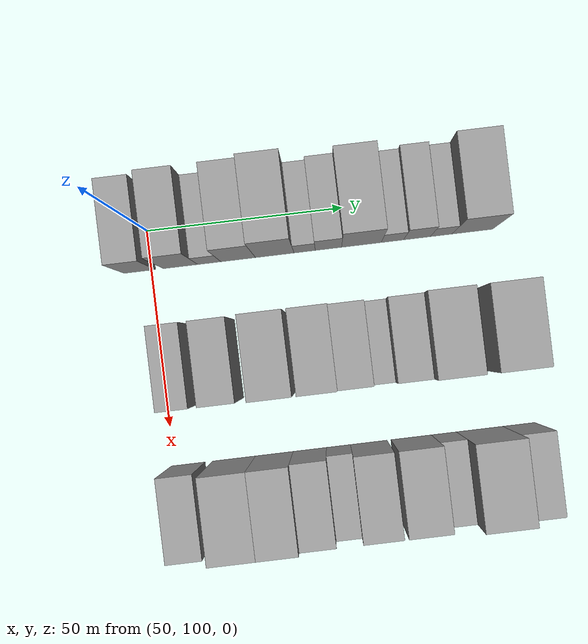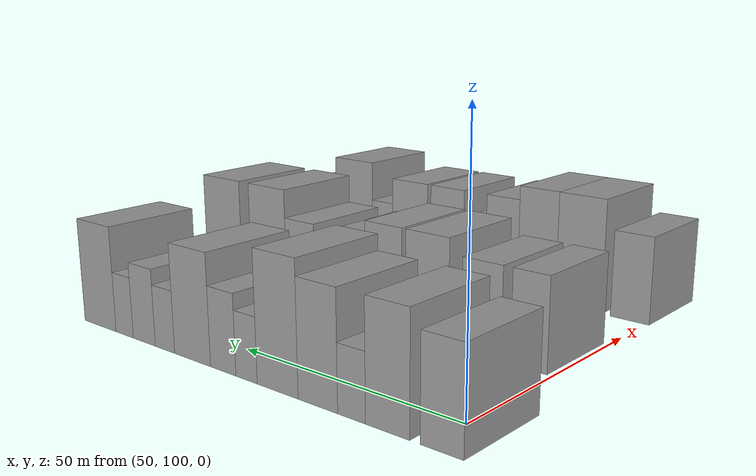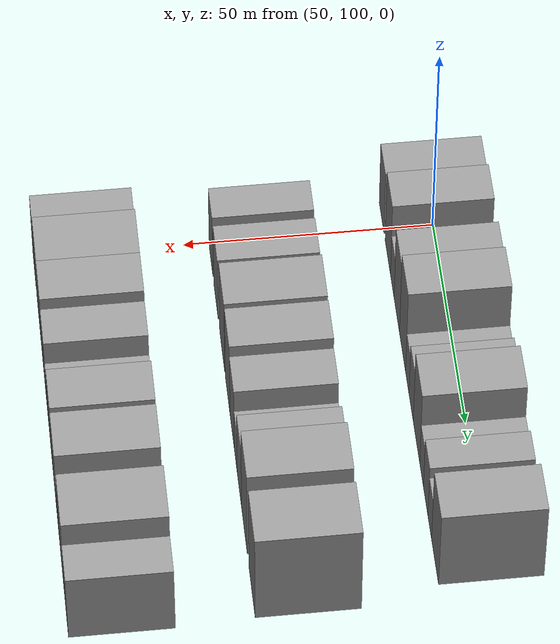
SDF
<sdf version="1.6">
 <world name="default">
  <model name="building_47">
   <static>1</static>
   <pose>50.0000 97.1232 0 0.000000 0.000000 0.000000</pose>
   <link name="link">
    <pose>0 0 9.00 0 0 0</pose>
    <collision name="collision"><geometry><box><size>20.0000 8.0123 18.0000</size></box></geometry></collision>
    <visual name="visual">
     <cast_shadows>0</cast_shadows>
     <geometry><box><size>20.0000 8.0123 18.0000</size></box></geometry>
     <material>
      <script>
       <uri>model://grey_wall/materials/scripts</uri>
       <uri>model://grey_wall/materials/textures</uri>
       <name>vrc/grey_wall</name>
      </script>
     </material>
    </visual>
   </link>
  </model>
  <model name="building_48">
   <static>1</static>
   <pose>50.0000 107.5432 0 0.000000 0.000000 0.000000</pose>
   <link name="link">
    <pose>0 0 10.50 0 0 0</pose>
    <collision name="collision"><geometry><box><size>20.0000 8.8278 21.0000</size></box></geometry></collision>
    <visual name="visual">
     <cast_shadows>0</cast_shadows>
     <geometry><box><size>20.0000 8.8278 21.0000</size></box></geometry>
     <material>
      <script>
       <uri>model://grey_wall/materials/scripts</uri>
       <uri>model://grey_wall/materials/textures</uri>
       <name>vrc/grey_wall</name>
      </script>
     </material>
    </visual>
   </link>
  </model>
  <model name="building_49">
   <static>1</static>
   <pose>50.0000 114.9018 0 0.000000 0.000000 0.000000</pose>
   <link name="link">
    <pose>0 0 6.00 0 0 0</pose>
    <collision name="collision"><geometry><box><size>20.0000 5.8894 12.0000</size></box></geometry></collision>
    <visual name="visual">
     <cast_shadows>0</cast_shadows>
     <geometry><box><size>20.0000 5.8894 12.0000</size></box></geometry>
     <material>
      <script>
       <uri>model://grey_wall/materials/scripts</uri>
       <uri>model://grey_wall/materials/textures</uri>
       <name>vrc/grey_wall</name>
      </script>
     </material>
    </visual>
   </link>
  </model>
  <model name="building_50">
   <static>1</static>
   <pose>50.0000 122.2735 0 0.000000 0.000000 0.000000</pose>
   <link name="link">
    <pose>0 0 10.50 0 0 0</pose>
    <collision name="collision"><geometry><box><size>20.0000 8.8539 21.0000</size></box></geometry></collision>
    <visual name="visual">
     <cast_shadows>0</cast_shadows>
     <geometry><box><size>20.0000 8.8539 21.0000</size></box></geometry>
     <material>
      <script>
       <uri>model://grey_wall/materials/scripts</uri>
       <uri>model://grey_wall/materials/textures</uri>
       <name>vrc/grey_wall</name>
      </script>
     </material>
    </visual>
   </link>
  </model>
  <model name="building_51">
   <static>1</static>
   <pose>50.0000 131.6182 0 0.000000 0.000000 0.000000</pose>
   <link name="link">
    <pose>0 0 12.00 0 0 0</pose>
    <collision name="collision"><geometry><box><size>20.0000 9.8357 24.0000</size></box></geometry></collision>
    <visual name="visual">
     <cast_shadows>0</cast_shadows>
     <geometry><box><size>20.0000 9.8357 24.0000</size></box></geometry>
     <material>
      <script>
       <uri>model://grey_wall/materials/scripts</uri>
       <uri>model://grey_wall/materials/textures</uri>
       <name>vrc/grey_wall</name>
      </script>
     </material>
    </visual>
   </link>
  </model>
  <model name="building_52">
   <static>1</static>
   <pose>50.0000 139.2439 0 0.000000 0.000000 0.000000</pose>
   <link name="link">
    <pose>0 0 6.00 0 0 0</pose>
    <collision name="collision"><geometry><box><size>20.0000 5.4157 12.0000</size></box></geometry></collision>
    <visual name="visual">
     <cast_shadows>0</cast_shadows>
     <geometry><box><size>20.0000 5.4157 12.0000</size></box></geometry>
     <material>
      <script>
       <uri>model://grey_wall/materials/scripts</uri>
       <uri>model://grey_wall/materials/textures</uri>
       <name>vrc/grey_wall</name>
      </script>
     </material>
    </visual>
   </link>
  </model>
  <model name="building_53">
   <static>1</static>
   <pose>50.0000 145.3080 0 0.000000 0.000000 0.000000</pose>
   <link name="link">
    <pose>0 0 7.50 0 0 0</pose>
    <collision name="collision"><geometry><box><size>20.0000 6.7124 15.0000</size></box></geometry></collision>
    <visual name="visual">
     <cast_shadows>0</cast_shadows>
     <geometry><box><size>20.0000 6.7124 15.0000</size></box></geometry>
     <material>
      <script>
       <uri>model://grey_wall/materials/scripts</uri>
       <uri>model://grey_wall/materials/textures</uri>
       <name>vrc/grey_wall</name>
      </script>
     </material>
    </visual>
   </link>
  </model>
  <model name="building_54">
   <static>1</static>
   <pose>50.0000 153.7200 0 0.000000 0.000000 0.000000</pose>
   <link name="link">
    <pose>0 0 10.50 0 0 0</pose>
    <collision name="collision"><geometry><box><size>20.0000 10.1116 21.0000</size></box></geometry></collision>
    <visual name="visual">
     <cast_shadows>0</cast_shadows>
     <geometry><box><size>20.0000 10.1116 21.0000</size></box></geometry>
     <material>
      <script>
       <uri>model://grey_wall/materials/scripts</uri>
       <uri>model://grey_wall/materials/textures</uri>
       <name>vrc/grey_wall</name>
      </script>
     </material>
    </visual>
   </link>
  </model>
  <model name="building_55">
   <static>1</static>
   <pose>50.0000 161.6311 0 0.000000 0.000000 0.000000</pose>
   <link name="link">
    <pose>0 0 6.00 0 0 0</pose>
    <collision name="collision"><geometry><box><size>20.0000 5.7107 12.0000</size></box></geometry></collision>
    <visual name="visual">
     <cast_shadows>0</cast_shadows>
     <geometry><box><size>20.0000 5.7107 12.0000</size></box></geometry>
     <material>
      <script>
       <uri>model://grey_wall/materials/scripts</uri>
       <uri>model://grey_wall/materials/textures</uri>
       <name>vrc/grey_wall</name>
      </script>
     </material>
    </visual>
   </link>
  </model>
  <model name="building_56">
   <static>1</static>
   <pose>50.0000 167.8996 0 0.000000 0.000000 0.000000</pose>
   <link name="link">
    <pose>0 0 7.50 0 0 0</pose>
    <collision name="collision"><geometry><box><size>20.0000 6.8262 15.0000</size></box></geometry></collision>
    <visual name="visual">
     <cast_shadows>0</cast_shadows>
     <geometry><box><size>20.0000 6.8262 15.0000</size></box></geometry>
     <material>
      <script>
       <uri>model://grey_wall/materials/scripts</uri>
       <uri>model://grey_wall/materials/textures</uri>
       <name>vrc/grey_wall</name>
      </script>
     </material>
    </visual>
   </link>
  </model>
  <model name="building_57">
   <static>1</static>
   <pose>50.0000 174.0683 0 0.000000 0.000000 0.000000</pose>
   <link name="link">
    <pose>0 0 6.00 0 0 0</pose>
    <collision name="collision"><geometry><box><size>20.0000 5.5111 12.0000</size></box></geometry></collision>
    <visual name="visual">
     <cast_shadows>0</cast_shadows>
     <geometry><box><size>20.0000 5.5111 12.0000</size></box></geometry>
     <material>
      <script>
       <uri>model://grey_wall/materials/scripts</uri>
       <uri>model://grey_wall/materials/textures</uri>
       <name>vrc/grey_wall</name>
      </script>
     </material>
    </visual>
   </link>
  </model>
  <model name="building_58">
   <static>1</static>
   <pose>50.0000 182.0635 0 0.000000 0.000000 0.000000</pose>
   <link name="link">
    <pose>0 0 10.50 0 0 0</pose>
    <collision name="collision"><geometry><box><size>20.0000 10.4793 21.0000</size></box></geometry></collision>
    <visual name="visual">
     <cast_shadows>0</cast_shadows>
     <geometry><box><size>20.0000 10.4793 21.0000</size></box></geometry>
     <material>
      <script>
       <uri>model://grey_wall/materials/scripts</uri>
       <uri>model://grey_wall/materials/textures</uri>
       <name>vrc/grey_wall</name>
      </script>
     </material>
    </visual>
   </link>
  </model>
  <model name="building_135">
   <static>1</static>
   <pose>85.0000 104.8368 0 0.000000 0.000000 0.000000</pose>
   <link name="link">
    <pose>0 0 9.00 0 0 0</pose>
    <collision name="collision"><geometry><box><size>20.0000 7.6245 18.0000</size></box></geometry></collision>
    <visual name="visual">
     <cast_shadows>0</cast_shadows>
     <geometry><box><size>20.0000 7.6245 18.0000</size></box></geometry>
     <material>
      <script>
       <uri>model://grey_wall/materials/scripts</uri>
       <uri>model://grey_wall/materials/textures</uri>
       <name>vrc/grey_wall</name>
      </script>
     </material>
    </visual>
   </link>
  </model>
  <model name="building_136">
   <static>1</static>
   <pose>85.0000 115.0629 0 0.000000 0.000000 0.000000</pose>
   <link name="link">
    <pose>0 0 9.00 0 0 0</pose>
    <collision name="collision"><geometry><box><size>20.0000 8.8278 18.0000</size></box></geometry></collision>
    <visual name="visual">
     <cast_shadows>0</cast_shadows>
     <geometry><box><size>20.0000 8.8278 18.0000</size></box></geometry>
     <material>
      <script>
       <uri>model://grey_wall/materials/scripts</uri>
       <uri>model://grey_wall/materials/textures</uri>
       <name>vrc/grey_wall</name>
      </script>
     </material>
    </visual>
   </link>
  </model>
  <model name="building_137">
   <static>1</static>
   <pose>85.0000 127.6393 0 0.000000 0.000000 0.000000</pose>
   <link name="link">
    <pose>0 0 10.50 0 0 0</pose>
    <collision name="collision"><geometry><box><size>20.0000 10.3249 21.0000</size></box></geometry></collision>
    <visual name="visual">
     <cast_shadows>0</cast_shadows>
     <geometry><box><size>20.0000 10.3249 21.0000</size></box></geometry>
     <material>
      <script>
       <uri>model://grey_wall/materials/scripts</uri>
       <uri>model://grey_wall/materials/textures</uri>
       <name>vrc/grey_wall</name>
      </script>
     </material>
    </visual>
   </link>
  </model>
  <model name="building_138">
   <static>1</static>
   <pose>85.0000 138.4946 0 0.000000 0.000000 0.000000</pose>
   <link name="link">
    <pose>0 0 10.50 0 0 0</pose>
    <collision name="collision"><geometry><box><size>20.0000 9.3857 21.0000</size></box></geometry></collision>
    <visual name="visual">
     <cast_shadows>0</cast_shadows>
     <geometry><box><size>20.0000 9.3857 21.0000</size></box></geometry>
     <material>
      <script>
       <uri>model://grey_wall/materials/scripts</uri>
       <uri>model://grey_wall/materials/textures</uri>
       <name>vrc/grey_wall</name>
      </script>
     </material>
    </visual>
   </link>
  </model>
  <model name="building_139">
   <static>1</static>
   <pose>85.0000 147.4624 0 0.000000 0.000000 0.000000</pose>
   <link name="link">
    <pose>0 0 9.00 0 0 0</pose>
    <collision name="collision"><geometry><box><size>20.0000 8.5499 18.0000</size></box></geometry></collision>
    <visual name="visual">
     <cast_shadows>0</cast_shadows>
     <geometry><box><size>20.0000 8.5499 18.0000</size></box></geometry>
     <material>
      <script>
       <uri>model://grey_wall/materials/scripts</uri>
       <uri>model://grey_wall/materials/textures</uri>
       <name>vrc/grey_wall</name>
      </script>
     </material>
    </visual>
   </link>
  </model>
  <model name="building_140">
   <static>1</static>
   <pose>85.0000 154.4914 0 0.000000 0.000000 0.000000</pose>
   <link name="link">
    <pose>0 0 6.00 0 0 0</pose>
    <collision name="collision"><geometry><box><size>20.0000 5.5082 12.0000</size></box></geometry></collision>
    <visual name="visual">
     <cast_shadows>0</cast_shadows>
     <geometry><box><size>20.0000 5.5082 12.0000</size></box></geometry>
     <material>
      <script>
       <uri>model://grey_wall/materials/scripts</uri>
       <uri>model://grey_wall/materials/textures</uri>
       <name>vrc/grey_wall</name>
      </script>
     </material>
    </visual>
   </link>
  </model>
  <model name="building_141">
   <static>1</static>
   <pose>85.0000 161.4335 0 0.000000 0.000000 0.000000</pose>
   <link name="link">
    <pose>0 0 9.00 0 0 0</pose>
    <collision name="collision"><geometry><box><size>20.0000 8.3759 18.0000</size></box></geometry></collision>
    <visual name="visual">
     <cast_shadows>0</cast_shadows>
     <geometry><box><size>20.0000 8.3759 18.0000</size></box></geometry>
     <material>
      <script>
       <uri>model://grey_wall/materials/scripts</uri>
       <uri>model://grey_wall/materials/textures</uri>
       <name>vrc/grey_wall</name>
      </script>
     </material>
    </visual>
   </link>
  </model>
  <model name="building_142">
   <static>1</static>
   <pose>85.0000 171.0765 0 0.000000 0.000000 0.000000</pose>
   <link name="link">
    <pose>0 0 12.00 0 0 0</pose>
    <collision name="collision"><geometry><box><size>20.0000 10.9102 24.0000</size></box></geometry></collision>
    <visual name="visual">
     <cast_shadows>0</cast_shadows>
     <geometry><box><size>20.0000 10.9102 24.0000</size></box></geometry>
     <material>
      <script>
       <uri>model://grey_wall/materials/scripts</uri>
       <uri>model://grey_wall/materials/textures</uri>
       <name>vrc/grey_wall</name>
      </script>
     </material>
    </visual>
   </link>
  </model>
  <model name="building_143">
   <static>1</static>
   <pose>85.0000 185.3813 0 0.000000 0.000000 0.000000</pose>
   <link name="link">
    <pose>0 0 12.00 0 0 0</pose>
    <collision name="collision"><geometry><box><size>20.0000 11.6994 24.0000</size></box></geometry></collision>
    <visual name="visual">
     <cast_shadows>0</cast_shadows>
     <geometry><box><size>20.0000 11.6994 24.0000</size></box></geometry>
     <material>
      <script>
       <uri>model://grey_wall/materials/scripts</uri>
       <uri>model://grey_wall/materials/textures</uri>
       <name>vrc/grey_wall</name>
      </script>
     </material>
    </visual>
   </link>
  </model>
  <model name="building_215">
   <static>1</static>
   <pose>120.0000 103.4927 0 0.000000 0.000000 0.000000</pose>
   <link name="link">
    <pose>0 0 9.00 0 0 0</pose>
    <collision name="collision"><geometry><box><size>20.0000 8.5957 18.0000</size></box></geometry></collision>
    <visual name="visual">
     <cast_shadows>0</cast_shadows>
     <geometry><box><size>20.0000 8.5957 18.0000</size></box></geometry>
     <material>
      <script>
       <uri>model://grey_wall/materials/scripts</uri>
       <uri>model://grey_wall/materials/textures</uri>
       <name>vrc/grey_wall</name>
      </script>
     </material>
    </visual>
   </link>
  </model>
  <model name="building_216">
   <static>1</static>
   <pose>120.0000 115.2581 0 0.000000 0.000000 0.000000</pose>
   <link name="link">
    <pose>0 0 12.00 0 0 0</pose>
    <collision name="collision"><geometry><box><size>20.0000 10.9352 24.0000</size></box></geometry></collision>
    <visual name="visual">
     <cast_shadows>0</cast_shadows>
     <geometry><box><size>20.0000 10.9352 24.0000</size></box></geometry>
     <material>
      <script>
       <uri>model://grey_wall/materials/scripts</uri>
       <uri>model://grey_wall/materials/textures</uri>
       <name>vrc/grey_wall</name>
      </script>
     </material>
    </visual>
   </link>
  </model>
  <model name="building_217">
   <static>1</static>
   <pose>120.0000 125.5268 0 0.000000 0.000000 0.000000</pose>
   <link name="link">
    <pose>0 0 12.00 0 0 0</pose>
    <collision name="collision"><geometry><box><size>20.0000 9.6021 24.0000</size></box></geometry></collision>
    <visual name="visual">
     <cast_shadows>0</cast_shadows>
     <geometry><box><size>20.0000 9.6021 24.0000</size></box></geometry>
     <material>
      <script>
       <uri>model://grey_wall/materials/scripts</uri>
       <uri>model://grey_wall/materials/textures</uri>
       <name>vrc/grey_wall</name>
      </script>
     </material>
    </visual>
   </link>
  </model>
  <model name="building_218">
   <static>1</static>
   <pose>120.0000 134.5560 0 0.000000 0.000000 0.000000</pose>
   <link name="link">
    <pose>0 0 10.50 0 0 0</pose>
    <collision name="collision"><geometry><box><size>20.0000 8.4563 21.0000</size></box></geometry></collision>
    <visual name="visual">
     <cast_shadows>0</cast_shadows>
     <geometry><box><size>20.0000 8.4563 21.0000</size></box></geometry>
     <material>
      <script>
       <uri>model://grey_wall/materials/scripts</uri>
       <uri>model://grey_wall/materials/textures</uri>
       <name>vrc/grey_wall</name>
      </script>
     </material>
    </visual>
   </link>
  </model>
  <model name="building_219">
   <static>1</static>
   <pose>120.0000 141.8514 0 0.000000 0.000000 0.000000</pose>
   <link name="link">
    <pose>0 0 7.50 0 0 0</pose>
    <collision name="collision"><geometry><box><size>20.0000 6.1344 15.0000</size></box></geometry></collision>
    <visual name="visual">
     <cast_shadows>0</cast_shadows>
     <geometry><box><size>20.0000 6.1344 15.0000</size></box></geometry>
     <material>
      <script>
       <uri>model://grey_wall/materials/scripts</uri>
       <uri>model://grey_wall/materials/textures</uri>
       <name>vrc/grey_wall</name>
      </script>
     </material>
    </visual>
   </link>
  </model>
  <model name="building_220">
   <static>1</static>
   <pose>120.0000 149.5937 0 0.000000 0.000000 0.000000</pose>
   <link name="link">
    <pose>0 0 10.50 0 0 0</pose>
    <collision name="collision"><geometry><box><size>20.0000 9.3503 21.0000</size></box></geometry></collision>
    <visual name="visual">
     <cast_shadows>0</cast_shadows>
     <geometry><box><size>20.0000 9.3503 21.0000</size></box></geometry>
     <material>
      <script>
       <uri>model://grey_wall/materials/scripts</uri>
       <uri>model://grey_wall/materials/textures</uri>
       <name>vrc/grey_wall</name>
      </script>
     </material>
    </visual>
   </link>
  </model>
  <model name="building_221">
   <static>1</static>
   <pose>120.0000 160.4302 0 0.000000 0.000000 0.000000</pose>
   <link name="link">
    <pose>0 0 10.50 0 0 0</pose>
    <collision name="collision"><geometry><box><size>20.0000 10.3227 21.0000</size></box></geometry></collision>
    <visual name="visual">
     <cast_shadows>0</cast_shadows>
     <geometry><box><size>20.0000 10.3227 21.0000</size></box></geometry>
     <material>
      <script>
       <uri>model://grey_wall/materials/scripts</uri>
       <uri>model://grey_wall/materials/textures</uri>
       <name>vrc/grey_wall</name>
      </script>
     </material>
    </visual>
   </link>
  </model>
  <model name="building_222">
   <static>1</static>
   <pose>120.0000 168.8046 0 0.000000 0.000000 0.000000</pose>
   <link name="link">
    <pose>0 0 7.50 0 0 0</pose>
    <collision name="collision"><geometry><box><size>20.0000 6.4261 15.0000</size></box></geometry></collision>
    <visual name="visual">
     <cast_shadows>0</cast_shadows>
     <geometry><box><size>20.0000 6.4261 15.0000</size></box></geometry>
     <material>
      <script>
       <uri>model://grey_wall/materials/scripts</uri>
       <uri>model://grey_wall/materials/textures</uri>
       <name>vrc/grey_wall</name>
      </script>
     </material>
    </visual>
   </link>
  </model>
  <model name="building_223">
   <static>1</static>
   <pose>120.0000 177.9425 0 0.000000 0.000000 0.000000</pose>
   <link name="link">
    <pose>0 0 12.00 0 0 0</pose>
    <collision name="collision"><geometry><box><size>20.0000 11.8497 24.0000</size></box></geometry></collision>
    <visual name="visual">
     <cast_shadows>0</cast_shadows>
     <geometry><box><size>20.0000 11.8497 24.0000</size></box></geometry>
     <material>
      <script>
       <uri>model://grey_wall/materials/scripts</uri>
       <uri>model://grey_wall/materials/textures</uri>
       <name>vrc/grey_wall</name>
      </script>
     </material>
    </visual>
   </link>
  </model>
  <model name="building_224">
   <static>1</static>
   <pose>120.0000 187.9455 0 0.000000 0.000000 0.000000</pose>
   <link name="link">
    <pose>0 0 9.00 0 0 0</pose>
    <collision name="collision"><geometry><box><size>20.0000 8.1562 18.0000</size></box></geometry></collision>
    <visual name="visual">
     <cast_shadows>0</cast_shadows>
     <geometry><box><size>20.0000 8.1562 18.0000</size></box></geometry>
     <material>
      <script>
       <uri>model://grey_wall/materials/scripts</uri>
       <uri>model://grey_wall/materials/textures</uri>
       <name>vrc/grey_wall</name>
      </script>
     </material>
    </visual>
   </link>
  </model>
 </world>
</sdf>
